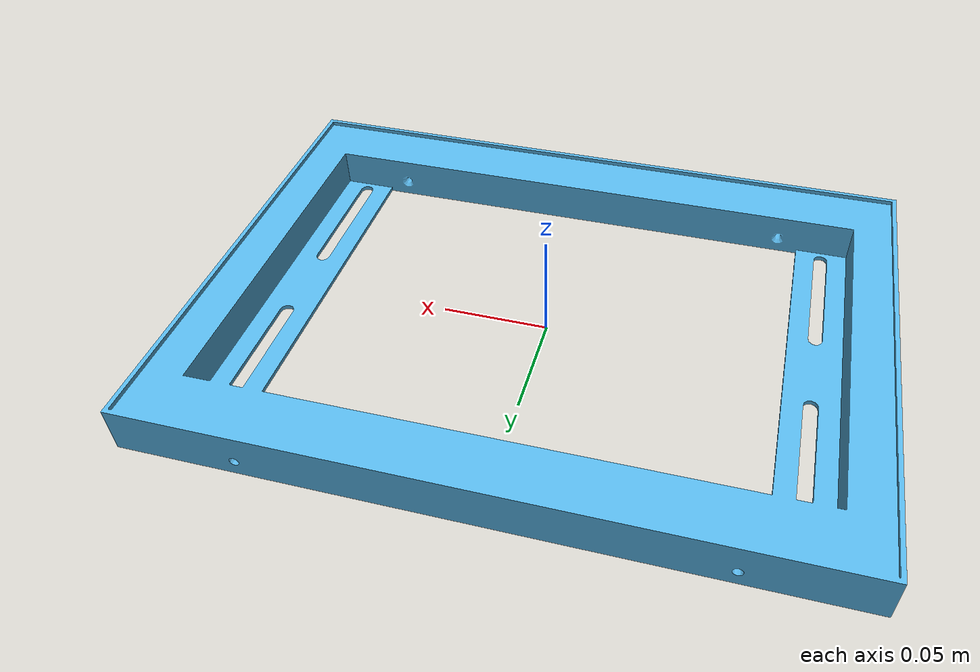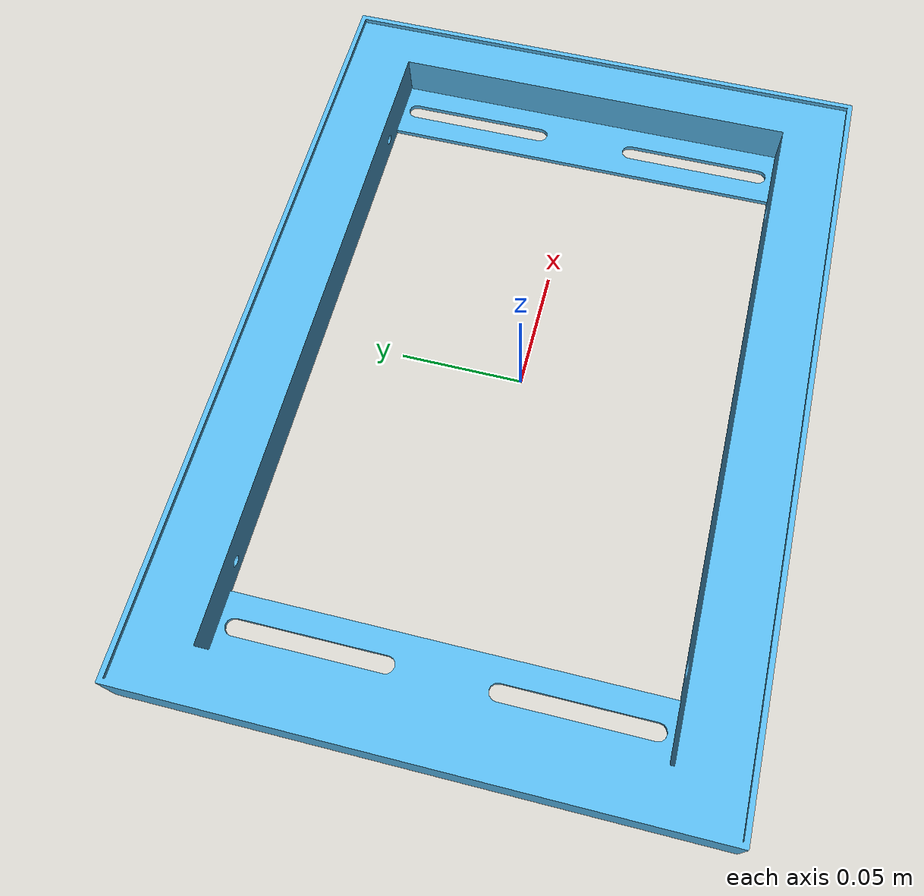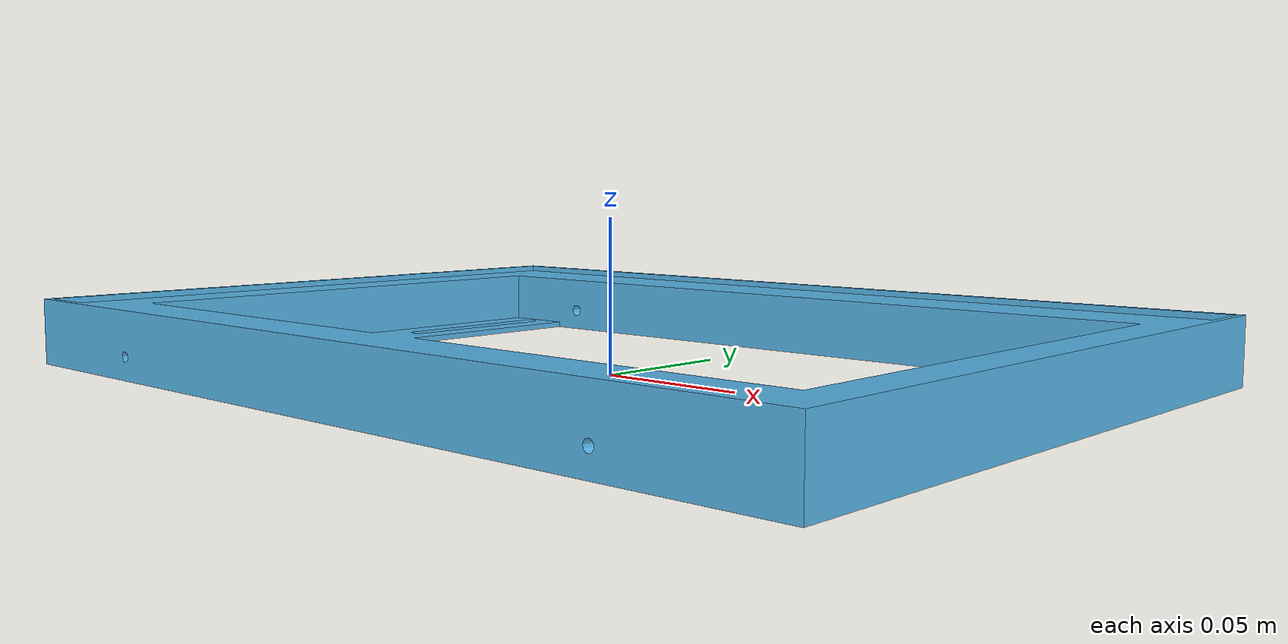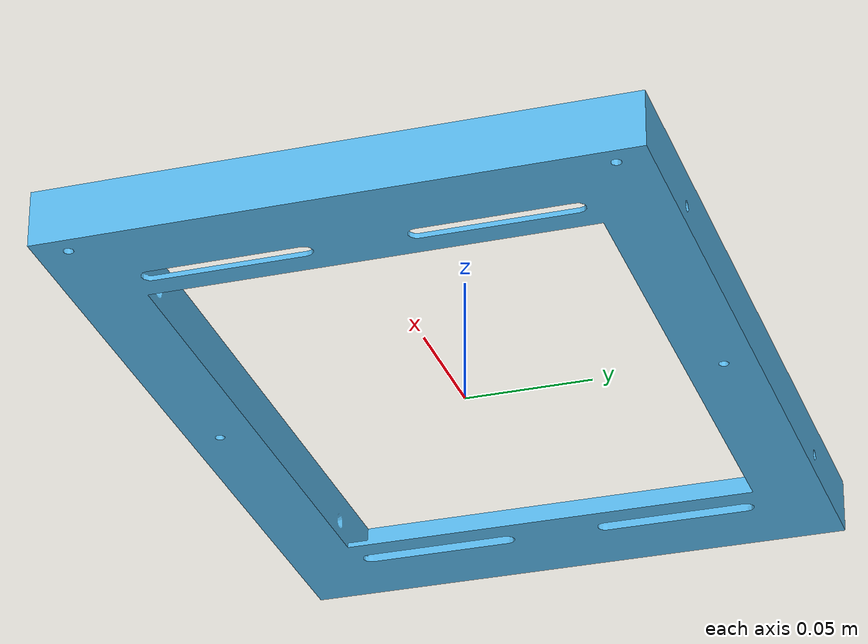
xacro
<?xml version="1.0" ?>
<robot name="box_container" xmlns:xacro="http://wiki.ros.org/xacro">

  <xacro:include filename="$(find rbkairos_description)/urdf/inertia.urdf.xacro" />

  <xacro:arg name="prefix" default="box_"/>
  <xacro:property name="prefix" value="$(arg prefix)" />

  <link name="${prefix}container_base_link">
  </link>

  <joint name="${prefix}container_joint" type="fixed">
    <origin rpy="1.57 0 0" xyz="0 0 0"/>
    <parent link="${prefix}container_base_link"/>
    <child link="${prefix}container_link"/>
  </joint>

  <link name="${prefix}container_link">
    <inertial>
      <mass value="0.1" />
      <origin xyz="0 0.011 0" />
      <solid_cuboid_inertia m="0.1" h="0.022" d="0.225" w="0.31"/>
    </inertial>
    <visual>
      <origin rpy="0 0 0" xyz="0 0 0"/>
      <geometry>
        <mesh filename="package://rbkairos_description/urdf/box/meshes/box_container.stl"/>
      </geometry>
    </visual>
    <collision>
      <origin rpy="0 0 0" xyz="0 0 0"/>
      <geometry>
        <mesh filename="package://rbkairos_description/urdf/box/meshes/box_container.stl"/>
      </geometry>
    </collision>
  </link>

    <gazebo reference="${prefix}container_link">
      <visual>
        <material>
          <ambient>0.0 0.0 0.0 1.0</ambient>
          <diffuse>0.2 0.2 0.2 1.0</diffuse>
          <specular>0.584313725 0.647058824 0.650980392 1.0</specular>
          <emissive>0.0 0.0 0.0 0.0</emissive>
        </material>
      </visual>
    </gazebo>

</robot>
